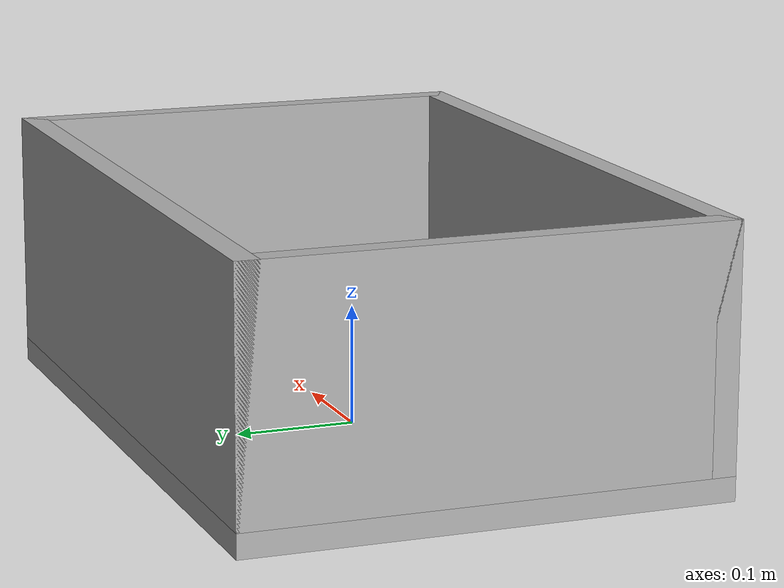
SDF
<?xml version="1.0" ?>
<sdf version="1.7">
  <model name="parts_bin">
    <static>true</static>
    <pose>0 0 0.0088398000225424767 0 0 0</pose>

    <link name="base">
      <collision name="base_collision">
        <geometry>
          <box>
            <size>0.6 0.4 0.02</size>
          </box>
        </geometry>
      </collision>
      <visual name="base_visual">
        <geometry>
          <box>
            <size>0.6 0.4 0.02</size>
          </box>
        </geometry>
        <material>
          <ambient>0.7 0.7 0.7 1</ambient>
          <diffuse>0.7 0.7 0.7 1</diffuse>
          <specular>0.75 0.75 0.75 1</specular>
        </material>
      </visual>
    </link>

    <link name="left_wall">
      <pose>0 0.19 0.11 0 0 0</pose>
      <collision name="collision">
        <geometry>
          <box>
            <size>0.6 0.02 0.2</size>
          </box>
        </geometry>
      </collision>
      <visual name="visual">
        <geometry>
          <box>
            <size>0.6 0.02 0.2</size>
          </box>
        </geometry>
        <material>
          <ambient>0.7 0.7 0.7 1</ambient>
          <diffuse>0.7 0.7 0.7 1</diffuse>
          <specular>0.75 0.75 0.75 1</specular>
        </material>
      </visual>
    </link>

    <link name="right_wall">
      <pose>0 -0.19 0.11 0 0 0</pose>
      <collision name="collision">
        <geometry>
          <box>
            <size>0.6 0.02 0.2</size>
          </box>
        </geometry>
      </collision>
      <visual name="visual">
        <geometry>
          <box>
            <size>0.6 0.02 0.2</size>
          </box>
        </geometry>
        <material>
          <ambient>0.7 0.7 0.7 1</ambient>
          <diffuse>0.7 0.7 0.7 1</diffuse>
          <specular>0.75 0.75 0.75 1</specular>
        </material>
      </visual>
    </link>

    <link name="front_wall">
      <pose>0.29 0 0.11 0 0 0</pose>
      <collision name="collision">
        <geometry>
          <box>
            <size>0.02 0.4 0.2</size>
          </box>
        </geometry>
      </collision>
      <visual name="visual">
        <geometry>
          <box>
            <size>0.02 0.4 0.2</size>
          </box>
        </geometry>
        <material>
          <ambient>0.7 0.7 0.7 1</ambient>
          <diffuse>0.7 0.7 0.7 1</diffuse>
          <specular>0.75 0.75 0.75 1</specular>
        </material>
      </visual>
    </link>

    <link name="back_wall">
      <pose>-0.29 0 0.11 0 0 0</pose>
      <collision name="collision">
        <geometry>
          <box>
            <size>0.02 0.4 0.2</size>
          </box>
        </geometry>
      </collision>
      <visual name="visual">
        <geometry>
          <box>
            <size>0.02 0.4 0.2</size>
          </box>
        </geometry>
        <material>
          <ambient>0.7 0.7 0.7 1</ambient>
          <diffuse>0.7 0.7 0.7 1</diffuse>
          <specular>0.75 0.75 0.75 1</specular>
        </material>
      </visual>
    </link>

    <joint name="left_joint" type="fixed">
      <parent>base</parent>
      <child>left_wall</child>
    </joint>

    <joint name="right_joint" type="fixed">
      <parent>base</parent>
      <child>right_wall</child>
    </joint>

    <joint name="front_joint" type="fixed">
      <parent>base</parent>
      <child>front_wall</child>
    </joint>

    <joint name="back_joint" type="fixed">
      <parent>base</parent>
      <child>back_wall</child>
    </joint>

  </model>
</sdf>
